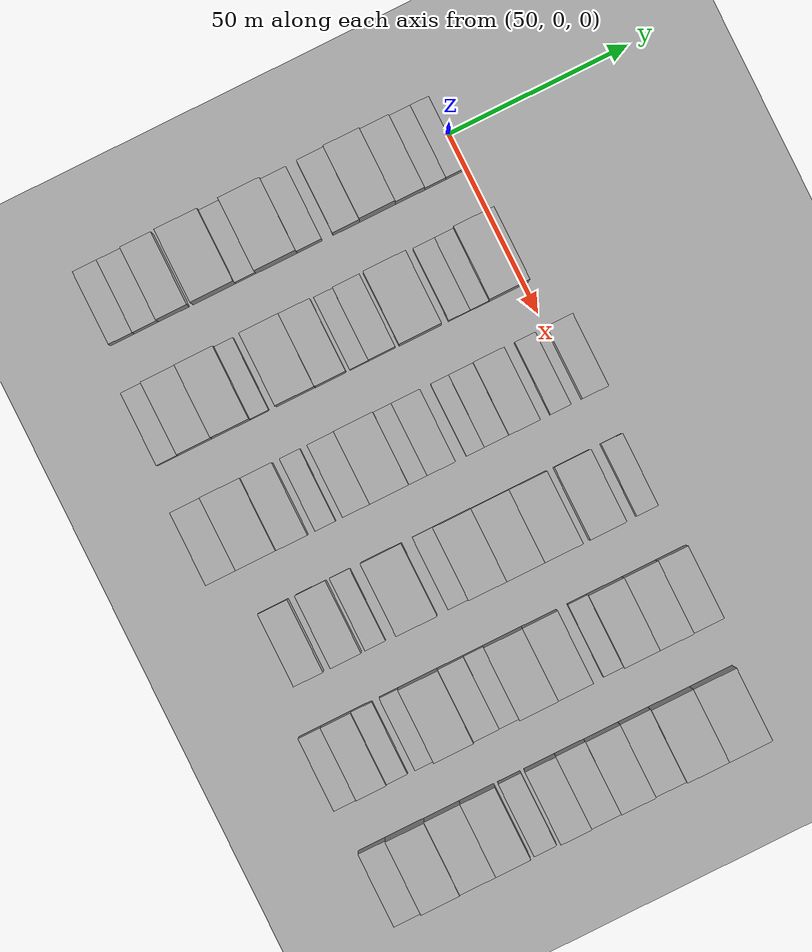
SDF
<sdf version="1.6">
 <world name="default">
  <include><name>ground_plane_1</name><uri>model://HANNAS_ground_plane</uri></include>
  <include>
   <name>ground_plane_2</name>
   <uri>model://HANNAS_ground_plane</uri>
   <pose>100 0 0  0 0 0</pose>
  </include>
  <model name="building_47">
   <static>1</static>
   <pose>50.0000 -95.4430 0 0.000000 0.000000 0.000000</pose>
   <link name="link">
    <pose>0 0 7.50 0 0 0</pose>
    <collision name="collision"><geometry><box><size>20.0000 6.6042 15.0000</size></box></geometry></collision>
    <visual name="visual">
     <cast_shadows>0</cast_shadows>
     <geometry><box><size>20.0000 6.6042 15.0000</size></box></geometry>
     <material>
      <script>
       <uri>model://HANNAS_wall/materials/scripts</uri>
       <uri>model://HANNAS_wall/materials/textures</uri>
       <name>vrc/HANNAS_wall</name>
      </script>
     </material>
    </visual>
   </link>
  </model>
  <model name="building_48">
   <static>1</static>
   <pose>50.0000 -88.7850 0 0.000000 0.000000 0.000000</pose>
   <link name="link">
    <pose>0 0 7.50 0 0 0</pose>
    <collision name="collision"><geometry><box><size>20.0000 6.7119 15.0000</size></box></geometry></collision>
    <visual name="visual">
     <cast_shadows>0</cast_shadows>
     <geometry><box><size>20.0000 6.7119 15.0000</size></box></geometry>
     <material>
      <script>
       <uri>model://HANNAS_wall/materials/scripts</uri>
       <uri>model://HANNAS_wall/materials/textures</uri>
       <name>vrc/HANNAS_wall</name>
      </script>
     </material>
    </visual>
   </link>
  </model>
  <model name="building_49">
   <static>1</static>
   <pose>50.0000 -81.1666 0 0.000000 0.000000 0.000000</pose>
   <link name="link">
    <pose>0 0 10.50 0 0 0</pose>
    <collision name="collision"><geometry><box><size>20.0000 8.5248 21.0000</size></box></geometry></collision>
    <visual name="visual">
     <cast_shadows>0</cast_shadows>
     <geometry><box><size>20.0000 8.5248 21.0000</size></box></geometry>
     <material>
      <script>
       <uri>model://HANNAS_wall/materials/scripts</uri>
       <uri>model://HANNAS_wall/materials/textures</uri>
       <name>vrc/HANNAS_wall</name>
      </script>
     </material>
    </visual>
   </link>
  </model>
  <model name="building_50">
   <static>1</static>
   <pose>50.0000 -70.0061 0 0.000000 0.000000 0.000000</pose>
   <link name="link">
    <pose>0 0 12.00 0 0 0</pose>
    <collision name="collision"><geometry><box><size>20.0000 11.7961 24.0000</size></box></geometry></collision>
    <visual name="visual">
     <cast_shadows>0</cast_shadows>
     <geometry><box><size>20.0000 11.7961 24.0000</size></box></geometry>
     <material>
      <script>
       <uri>model://HANNAS_wall/materials/scripts</uri>
       <uri>model://HANNAS_wall/materials/textures</uri>
       <name>vrc/HANNAS_wall</name>
      </script>
     </material>
    </visual>
   </link>
  </model>
  <model name="building_51">
   <static>1</static>
   <pose>50.0000 -61.2679 0 0.000000 0.000000 0.000000</pose>
   <link name="link">
    <pose>0 0 6.00 0 0 0</pose>
    <collision name="collision"><geometry><box><size>20.0000 5.6803 12.0000</size></box></geometry></collision>
    <visual name="visual">
     <cast_shadows>0</cast_shadows>
     <geometry><box><size>20.0000 5.6803 12.0000</size></box></geometry>
     <material>
      <script>
       <uri>model://HANNAS_wall/materials/scripts</uri>
       <uri>model://HANNAS_wall/materials/textures</uri>
       <name>vrc/HANNAS_wall</name>
      </script>
     </material>
    </visual>
   </link>
  </model>
  <model name="building_52">
   <static>1</static>
   <pose>50.0000 -52.7203 0 0.000000 0.000000 0.000000</pose>
   <link name="link">
    <pose>0 0 12.00 0 0 0</pose>
    <collision name="collision"><geometry><box><size>20.0000 11.4149 24.0000</size></box></geometry></collision>
    <visual name="visual">
     <cast_shadows>0</cast_shadows>
     <geometry><box><size>20.0000 11.4149 24.0000</size></box></geometry>
     <material>
      <script>
       <uri>model://HANNAS_wall/materials/scripts</uri>
       <uri>model://HANNAS_wall/materials/textures</uri>
       <name>vrc/HANNAS_wall</name>
      </script>
     </material>
    </visual>
   </link>
  </model>
  <model name="building_53">
   <static>1</static>
   <pose>50.0000 -43.5007 0 0.000000 0.000000 0.000000</pose>
   <link name="link">
    <pose>0 0 7.50 0 0 0</pose>
    <collision name="collision"><geometry><box><size>20.0000 7.0243 15.0000</size></box></geometry></collision>
    <visual name="visual">
     <cast_shadows>0</cast_shadows>
     <geometry><box><size>20.0000 7.0243 15.0000</size></box></geometry>
     <material>
      <script>
       <uri>model://HANNAS_wall/materials/scripts</uri>
       <uri>model://HANNAS_wall/materials/textures</uri>
       <name>vrc/HANNAS_wall</name>
      </script>
     </material>
    </visual>
   </link>
  </model>
  <model name="building_54">
   <static>1</static>
   <pose>50.0000 -33.2947 0 0.000000 0.000000 0.000000</pose>
   <link name="link">
    <pose>0 0 9.00 0 0 0</pose>
    <collision name="collision"><geometry><box><size>20.0000 7.3877 18.0000</size></box></geometry></collision>
    <visual name="visual">
     <cast_shadows>0</cast_shadows>
     <geometry><box><size>20.0000 7.3877 18.0000</size></box></geometry>
     <material>
      <script>
       <uri>model://HANNAS_wall/materials/scripts</uri>
       <uri>model://HANNAS_wall/materials/textures</uri>
       <name>vrc/HANNAS_wall</name>
      </script>
     </material>
    </visual>
   </link>
  </model>
  <model name="building_55">
   <static>1</static>
   <pose>50.0000 -24.6311 0 0.000000 0.000000 0.000000</pose>
   <link name="link">
    <pose>0 0 12.00 0 0 0</pose>
    <collision name="collision"><geometry><box><size>20.0000 9.9393 24.0000</size></box></geometry></collision>
    <visual name="visual">
     <cast_shadows>0</cast_shadows>
     <geometry><box><size>20.0000 9.9393 24.0000</size></box></geometry>
     <material>
      <script>
       <uri>model://HANNAS_wall/materials/scripts</uri>
       <uri>model://HANNAS_wall/materials/textures</uri>
       <name>vrc/HANNAS_wall</name>
      </script>
     </material>
    </visual>
   </link>
  </model>
  <model name="building_56">
   <static>1</static>
   <pose>50.0000 -15.6285 0 0.000000 0.000000 0.000000</pose>
   <link name="link">
    <pose>0 0 9.00 0 0 0</pose>
    <collision name="collision"><geometry><box><size>20.0000 8.0659 18.0000</size></box></geometry></collision>
    <visual name="visual">
     <cast_shadows>0</cast_shadows>
     <geometry><box><size>20.0000 8.0659 18.0000</size></box></geometry>
     <material>
      <script>
       <uri>model://HANNAS_wall/materials/scripts</uri>
       <uri>model://HANNAS_wall/materials/textures</uri>
       <name>vrc/HANNAS_wall</name>
      </script>
     </material>
    </visual>
   </link>
  </model>
  <model name="building_57">
   <static>1</static>
   <pose>50.0000 -8.6437 0 0.000000 0.000000 0.000000</pose>
   <link name="link">
    <pose>0 0 6.00 0 0 0</pose>
    <collision name="collision"><geometry><box><size>20.0000 5.9038 12.0000</size></box></geometry></collision>
    <visual name="visual">
     <cast_shadows>0</cast_shadows>
     <geometry><box><size>20.0000 5.9038 12.0000</size></box></geometry>
     <material>
      <script>
       <uri>model://HANNAS_wall/materials/scripts</uri>
       <uri>model://HANNAS_wall/materials/textures</uri>
       <name>vrc/HANNAS_wall</name>
      </script>
     </material>
    </visual>
   </link>
  </model>
  <model name="building_58">
   <static>1</static>
   <pose>50.0000 -3.1294 0 0.000000 0.000000 0.000000</pose>
   <link name="link">
    <pose>0 0 6.00 0 0 0</pose>
    <collision name="collision"><geometry><box><size>20.0000 5.1248 12.0000</size></box></geometry></collision>
    <visual name="visual">
     <cast_shadows>0</cast_shadows>
     <geometry><box><size>20.0000 5.1248 12.0000</size></box></geometry>
     <material>
      <script>
       <uri>model://HANNAS_wall/materials/scripts</uri>
       <uri>model://HANNAS_wall/materials/textures</uri>
       <name>vrc/HANNAS_wall</name>
      </script>
     </material>
    </visual>
   </link>
  </model>
  <model name="building_174">
   <static>1</static>
   <pose>82.0000 -98.5659 0 0.000000 0.000000 0.000000</pose>
   <link name="link">
    <pose>0 0 6.00 0 0 0</pose>
    <collision name="collision"><geometry><box><size>20.0000 5.9200 12.0000</size></box></geometry></collision>
    <visual name="visual">
     <cast_shadows>0</cast_shadows>
     <geometry><box><size>20.0000 5.9200 12.0000</size></box></geometry>
     <material>
      <script>
       <uri>model://HANNAS_wall/materials/scripts</uri>
       <uri>model://HANNAS_wall/materials/textures</uri>
       <name>vrc/HANNAS_wall</name>
      </script>
     </material>
    </visual>
   </link>
  </model>
  <model name="building_175">
   <static>1</static>
   <pose>82.0000 -90.9202 0 0.000000 0.000000 0.000000</pose>
   <link name="link">
    <pose>0 0 10.50 0 0 0</pose>
    <collision name="collision"><geometry><box><size>20.0000 9.3715 21.0000</size></box></geometry></collision>
    <visual name="visual">
     <cast_shadows>0</cast_shadows>
     <geometry><box><size>20.0000 9.3715 21.0000</size></box></geometry>
     <material>
      <script>
       <uri>model://HANNAS_wall/materials/scripts</uri>
       <uri>model://HANNAS_wall/materials/textures</uri>
       <name>vrc/HANNAS_wall</name>
      </script>
     </material>
    </visual>
   </link>
  </model>
  <model name="building_176">
   <static>1</static>
   <pose>82.0000 -80.9588 0 0.000000 0.000000 0.000000</pose>
   <link name="link">
    <pose>0 0 12.00 0 0 0</pose>
    <collision name="collision"><geometry><box><size>20.0000 10.5512 24.0000</size></box></geometry></collision>
    <visual name="visual">
     <cast_shadows>0</cast_shadows>
     <geometry><box><size>20.0000 10.5512 24.0000</size></box></geometry>
     <material>
      <script>
       <uri>model://HANNAS_wall/materials/scripts</uri>
       <uri>model://HANNAS_wall/materials/textures</uri>
       <name>vrc/HANNAS_wall</name>
      </script>
     </material>
    </visual>
   </link>
  </model>
  <model name="building_177">
   <static>1</static>
   <pose>82.0000 -73.1004 0 0.000000 0.000000 0.000000</pose>
   <link name="link">
    <pose>0 0 6.00 0 0 0</pose>
    <collision name="collision"><geometry><box><size>20.0000 5.1656 12.0000</size></box></geometry></collision>
    <visual name="visual">
     <cast_shadows>0</cast_shadows>
     <geometry><box><size>20.0000 5.1656 12.0000</size></box></geometry>
     <material>
      <script>
       <uri>model://HANNAS_wall/materials/scripts</uri>
       <uri>model://HANNAS_wall/materials/textures</uri>
       <name>vrc/HANNAS_wall</name>
      </script>
     </material>
    </visual>
   </link>
  </model>
  <model name="building_178">
   <static>1</static>
   <pose>82.0000 -63.1329 0 0.000000 0.000000 0.000000</pose>
   <link name="link">
    <pose>0 0 12.00 0 0 0</pose>
    <collision name="collision"><geometry><box><size>20.0000 10.7694 24.0000</size></box></geometry></collision>
    <visual name="visual">
     <cast_shadows>0</cast_shadows>
     <geometry><box><size>20.0000 10.7694 24.0000</size></box></geometry>
     <material>
      <script>
       <uri>model://HANNAS_wall/materials/scripts</uri>
       <uri>model://HANNAS_wall/materials/textures</uri>
       <name>vrc/HANNAS_wall</name>
      </script>
     </material>
    </visual>
   </link>
  </model>
  <model name="building_179">
   <static>1</static>
   <pose>82.0000 -53.4603 0 0.000000 0.000000 0.000000</pose>
   <link name="link">
    <pose>0 0 10.50 0 0 0</pose>
    <collision name="collision"><geometry><box><size>20.0000 8.5757 21.0000</size></box></geometry></collision>
    <visual name="visual">
     <cast_shadows>0</cast_shadows>
     <geometry><box><size>20.0000 8.5757 21.0000</size></box></geometry>
     <material>
      <script>
       <uri>model://HANNAS_wall/materials/scripts</uri>
       <uri>model://HANNAS_wall/materials/textures</uri>
       <name>vrc/HANNAS_wall</name>
      </script>
     </material>
    </visual>
   </link>
  </model>
  <model name="building_180">
   <static>1</static>
   <pose>82.0000 -45.5752 0 0.000000 0.000000 0.000000</pose>
   <link name="link">
    <pose>0 0 6.00 0 0 0</pose>
    <collision name="collision"><geometry><box><size>20.0000 5.1945 12.0000</size></box></geometry></collision>
    <visual name="visual">
     <cast_shadows>0</cast_shadows>
     <geometry><box><size>20.0000 5.1945 12.0000</size></box></geometry>
     <material>
      <script>
       <uri>model://HANNAS_wall/materials/scripts</uri>
       <uri>model://HANNAS_wall/materials/textures</uri>
       <name>vrc/HANNAS_wall</name>
      </script>
     </material>
    </visual>
   </link>
  </model>
  <model name="building_181">
   <static>1</static>
   <pose>82.0000 -39.2440 0 0.000000 0.000000 0.000000</pose>
   <link name="link">
    <pose>0 0 9.00 0 0 0</pose>
    <collision name="collision"><geometry><box><size>20.0000 7.4680 18.0000</size></box></geometry></collision>
    <visual name="visual">
     <cast_shadows>0</cast_shadows>
     <geometry><box><size>20.0000 7.4680 18.0000</size></box></geometry>
     <material>
      <script>
       <uri>model://HANNAS_wall/materials/scripts</uri>
       <uri>model://HANNAS_wall/materials/textures</uri>
       <name>vrc/HANNAS_wall</name>
      </script>
     </material>
    </visual>
   </link>
  </model>
  <model name="building_182">
   <static>1</static>
   <pose>82.0000 -28.6524 0 0.000000 0.000000 0.000000</pose>
   <link name="link">
    <pose>0 0 12.00 0 0 0</pose>
    <collision name="collision"><geometry><box><size>20.0000 11.7150 24.0000</size></box></geometry></collision>
    <visual name="visual">
     <cast_shadows>0</cast_shadows>
     <geometry><box><size>20.0000 11.7150 24.0000</size></box></geometry>
     <material>
      <script>
       <uri>model://HANNAS_wall/materials/scripts</uri>
       <uri>model://HANNAS_wall/materials/textures</uri>
       <name>vrc/HANNAS_wall</name>
      </script>
     </material>
    </visual>
   </link>
  </model>
  <model name="building_183">
   <static>1</static>
   <pose>82.0000 -17.8279 0 0.000000 0.000000 0.000000</pose>
   <link name="link">
    <pose>0 0 6.00 0 0 0</pose>
    <collision name="collision"><geometry><box><size>20.0000 5.9341 12.0000</size></box></geometry></collision>
    <visual name="visual">
     <cast_shadows>0</cast_shadows>
     <geometry><box><size>20.0000 5.9341 12.0000</size></box></geometry>
     <material>
      <script>
       <uri>model://HANNAS_wall/materials/scripts</uri>
       <uri>model://HANNAS_wall/materials/textures</uri>
       <name>vrc/HANNAS_wall</name>
      </script>
     </material>
    </visual>
   </link>
  </model>
  <model name="building_184">
   <static>1</static>
   <pose>82.0000 -12.2548 0 0.000000 0.000000 0.000000</pose>
   <link name="link">
    <pose>0 0 6.00 0 0 0</pose>
    <collision name="collision"><geometry><box><size>20.0000 5.2121 12.0000</size></box></geometry></collision>
    <visual name="visual">
     <cast_shadows>0</cast_shadows>
     <geometry><box><size>20.0000 5.2121 12.0000</size></box></geometry>
     <material>
      <script>
       <uri>model://HANNAS_wall/materials/scripts</uri>
       <uri>model://HANNAS_wall/materials/textures</uri>
       <name>vrc/HANNAS_wall</name>
      </script>
     </material>
    </visual>
   </link>
  </model>
  <model name="building_185">
   <static>1</static>
   <pose>82.0000 -4.0942 0 0.000000 0.000000 0.000000</pose>
   <link name="link">
    <pose>0 0 12.00 0 0 0</pose>
    <collision name="collision"><geometry><box><size>20.0000 11.1090 24.0000</size></box></geometry></collision>
    <visual name="visual">
     <cast_shadows>0</cast_shadows>
     <geometry><box><size>20.0000 11.1090 24.0000</size></box></geometry>
     <material>
      <script>
       <uri>model://HANNAS_wall/materials/scripts</uri>
       <uri>model://HANNAS_wall/materials/textures</uri>
       <name>vrc/HANNAS_wall</name>
      </script>
     </material>
    </visual>
   </link>
  </model>
  <model name="building_297">
   <static>1</static>
   <pose>114.0000 -99.3370 0 0.000000 0.000000 0.000000</pose>
   <link name="link">
    <pose>0 0 9.00 0 0 0</pose>
    <collision name="collision"><geometry><box><size>20.0000 8.3802 18.0000</size></box></geometry></collision>
    <visual name="visual">
     <cast_shadows>0</cast_shadows>
     <geometry><box><size>20.0000 8.3802 18.0000</size></box></geometry>
     <material>
      <script>
       <uri>model://HANNAS_wall/materials/scripts</uri>
       <uri>model://HANNAS_wall/materials/textures</uri>
       <name>vrc/HANNAS_wall</name>
      </script>
     </material>
    </visual>
   </link>
  </model>
  <model name="building_298">
   <static>1</static>
   <pose>114.0000 -89.6653 0 0.000000 0.000000 0.000000</pose>
   <link name="link">
    <pose>0 0 12.00 0 0 0</pose>
    <collision name="collision"><geometry><box><size>20.0000 10.9631 24.0000</size></box></geometry></collision>
    <visual name="visual">
     <cast_shadows>0</cast_shadows>
     <geometry><box><size>20.0000 10.9631 24.0000</size></box></geometry>
     <material>
      <script>
       <uri>model://HANNAS_wall/materials/scripts</uri>
       <uri>model://HANNAS_wall/materials/textures</uri>
       <name>vrc/HANNAS_wall</name>
      </script>
     </material>
    </visual>
   </link>
  </model>
  <model name="building_299">
   <static>1</static>
   <pose>114.0000 -79.8586 0 0.000000 0.000000 0.000000</pose>
   <link name="link">
    <pose>0 0 9.00 0 0 0</pose>
    <collision name="collision"><geometry><box><size>20.0000 8.6504 18.0000</size></box></geometry></collision>
    <visual name="visual">
     <cast_shadows>0</cast_shadows>
     <geometry><box><size>20.0000 8.6504 18.0000</size></box></geometry>
     <material>
      <script>
       <uri>model://HANNAS_wall/materials/scripts</uri>
       <uri>model://HANNAS_wall/materials/textures</uri>
       <name>vrc/HANNAS_wall</name>
      </script>
     </material>
    </visual>
   </link>
  </model>
  <model name="building_300">
   <static>1</static>
   <pose>114.0000 -70.7126 0 0.000000 0.000000 0.000000</pose>
   <link name="link">
    <pose>0 0 6.00 0 0 0</pose>
    <collision name="collision"><geometry><box><size>20.0000 5.6416 12.0000</size></box></geometry></collision>
    <visual name="visual">
     <cast_shadows>0</cast_shadows>
     <geometry><box><size>20.0000 5.6416 12.0000</size></box></geometry>
     <material>
      <script>
       <uri>model://HANNAS_wall/materials/scripts</uri>
       <uri>model://HANNAS_wall/materials/textures</uri>
       <name>vrc/HANNAS_wall</name>
      </script>
     </material>
    </visual>
   </link>
  </model>
  <model name="building_301">
   <static>1</static>
   <pose>114.0000 -62.1440 0 0.000000 0.000000 0.000000</pose>
   <link name="link">
    <pose>0 0 7.50 0 0 0</pose>
    <collision name="collision"><geometry><box><size>20.0000 7.4957 15.0000</size></box></geometry></collision>
    <visual name="visual">
     <cast_shadows>0</cast_shadows>
     <geometry><box><size>20.0000 7.4957 15.0000</size></box></geometry>
     <material>
      <script>
       <uri>model://HANNAS_wall/materials/scripts</uri>
       <uri>model://HANNAS_wall/materials/textures</uri>
       <name>vrc/HANNAS_wall</name>
      </script>
     </material>
    </visual>
   </link>
  </model>
  <model name="building_302">
   <static>1</static>
   <pose>114.0000 -53.0192 0 0.000000 0.000000 0.000000</pose>
   <link name="link">
    <pose>0 0 12.00 0 0 0</pose>
    <collision name="collision"><geometry><box><size>20.0000 10.7539 24.0000</size></box></geometry></collision>
    <visual name="visual">
     <cast_shadows>0</cast_shadows>
     <geometry><box><size>20.0000 10.7539 24.0000</size></box></geometry>
     <material>
      <script>
       <uri>model://HANNAS_wall/materials/scripts</uri>
       <uri>model://HANNAS_wall/materials/textures</uri>
       <name>vrc/HANNAS_wall</name>
      </script>
     </material>
    </visual>
   </link>
  </model>
  <model name="building_303">
   <static>1</static>
   <pose>114.0000 -45.1368 0 0.000000 0.000000 0.000000</pose>
   <link name="link">
    <pose>0 0 6.00 0 0 0</pose>
    <collision name="collision"><geometry><box><size>20.0000 5.0109 12.0000</size></box></geometry></collision>
    <visual name="visual">
     <cast_shadows>0</cast_shadows>
     <geometry><box><size>20.0000 5.0109 12.0000</size></box></geometry>
     <material>
      <script>
       <uri>model://HANNAS_wall/materials/scripts</uri>
       <uri>model://HANNAS_wall/materials/textures</uri>
       <name>vrc/HANNAS_wall</name>
      </script>
     </material>
    </visual>
   </link>
  </model>
  <model name="building_304">
   <static>1</static>
   <pose>114.0000 -38.6983 0 0.000000 0.000000 0.000000</pose>
   <link name="link">
    <pose>0 0 9.00 0 0 0</pose>
    <collision name="collision"><geometry><box><size>20.0000 7.8661 18.0000</size></box></geometry></collision>
    <visual name="visual">
     <cast_shadows>0</cast_shadows>
     <geometry><box><size>20.0000 7.8661 18.0000</size></box></geometry>
     <material>
      <script>
       <uri>model://HANNAS_wall/materials/scripts</uri>
       <uri>model://HANNAS_wall/materials/textures</uri>
       <name>vrc/HANNAS_wall</name>
      </script>
     </material>
    </visual>
   </link>
  </model>
  <model name="building_305">
   <static>1</static>
   <pose>114.0000 -29.2899 0 0.000000 0.000000 0.000000</pose>
   <link name="link">
    <pose>0 0 6.00 0 0 0</pose>
    <collision name="collision"><geometry><box><size>20.0000 4.9507 12.0000</size></box></geometry></collision>
    <visual name="visual">
     <cast_shadows>0</cast_shadows>
     <geometry><box><size>20.0000 4.9507 12.0000</size></box></geometry>
     <material>
      <script>
       <uri>model://HANNAS_wall/materials/scripts</uri>
       <uri>model://HANNAS_wall/materials/textures</uri>
       <name>vrc/HANNAS_wall</name>
      </script>
     </material>
    </visual>
   </link>
  </model>
  <model name="building_306">
   <static>1</static>
   <pose>114.0000 -23.4647 0 0.000000 0.000000 0.000000</pose>
   <link name="link">
    <pose>0 0 7.50 0 0 0</pose>
    <collision name="collision"><geometry><box><size>20.0000 6.6997 15.0000</size></box></geometry></collision>
    <visual name="visual">
     <cast_shadows>0</cast_shadows>
     <geometry><box><size>20.0000 6.6997 15.0000</size></box></geometry>
     <material>
      <script>
       <uri>model://HANNAS_wall/materials/scripts</uri>
       <uri>model://HANNAS_wall/materials/textures</uri>
       <name>vrc/HANNAS_wall</name>
      </script>
     </material>
    </visual>
   </link>
  </model>
  <model name="building_307">
   <static>1</static>
   <pose>114.0000 -15.8246 0 0.000000 0.000000 0.000000</pose>
   <link name="link">
    <pose>0 0 10.50 0 0 0</pose>
    <collision name="collision"><geometry><box><size>20.0000 8.5805 21.0000</size></box></geometry></collision>
    <visual name="visual">
     <cast_shadows>0</cast_shadows>
     <geometry><box><size>20.0000 8.5805 21.0000</size></box></geometry>
     <material>
      <script>
       <uri>model://HANNAS_wall/materials/scripts</uri>
       <uri>model://HANNAS_wall/materials/textures</uri>
       <name>vrc/HANNAS_wall</name>
      </script>
     </material>
    </visual>
   </link>
  </model>
  <model name="building_308">
   <static>1</static>
   <pose>114.0000 -5.6812 0 0.000000 0.000000 0.000000</pose>
   <link name="link">
    <pose>0 0 6.00 0 0 0</pose>
    <collision name="collision"><geometry><box><size>20.0000 5.7062 12.0000</size></box></geometry></collision>
    <visual name="visual">
     <cast_shadows>0</cast_shadows>
     <geometry><box><size>20.0000 5.7062 12.0000</size></box></geometry>
     <material>
      <script>
       <uri>model://HANNAS_wall/materials/scripts</uri>
       <uri>model://HANNAS_wall/materials/textures</uri>
       <name>vrc/HANNAS_wall</name>
      </script>
     </material>
    </visual>
   </link>
  </model>
  <model name="building_309">
   <static>1</static>
   <pose>114.0000 3.8052 0 0.000000 0.000000 0.000000</pose>
   <link name="link">
    <pose>0 0 7.50 0 0 0</pose>
    <collision name="collision"><geometry><box><size>20.0000 7.2668 15.0000</size></box></geometry></collision>
    <visual name="visual">
     <cast_shadows>0</cast_shadows>
     <geometry><box><size>20.0000 7.2668 15.0000</size></box></geometry>
     <material>
      <script>
       <uri>model://HANNAS_wall/materials/scripts</uri>
       <uri>model://HANNAS_wall/materials/textures</uri>
       <name>vrc/HANNAS_wall</name>
      </script>
     </material>
    </visual>
   </link>
  </model>
  <model name="building_417">
   <static>1</static>
   <pose>146.0000 -91.1633 0 0.000000 0.000000 0.000000</pose>
   <link name="link">
    <pose>0 0 9.00 0 0 0</pose>
    <collision name="collision"><geometry><box><size>20.0000 8.1325 18.0000</size></box></geometry></collision>
    <visual name="visual">
     <cast_shadows>0</cast_shadows>
     <geometry><box><size>20.0000 8.1325 18.0000</size></box></geometry>
     <material>
      <script>
       <uri>model://HANNAS_wall/materials/scripts</uri>
       <uri>model://HANNAS_wall/materials/textures</uri>
       <name>vrc/HANNAS_wall</name>
      </script>
     </material>
    </visual>
   </link>
  </model>
  <model name="building_418">
   <static>1</static>
   <pose>146.0000 -80.8485 0 0.000000 0.000000 0.000000</pose>
   <link name="link">
    <pose>0 0 9.00 0 0 0</pose>
    <collision name="collision"><geometry><box><size>20.0000 8.4970 18.0000</size></box></geometry></collision>
    <visual name="visual">
     <cast_shadows>0</cast_shadows>
     <geometry><box><size>20.0000 8.4970 18.0000</size></box></geometry>
     <material>
      <script>
       <uri>model://HANNAS_wall/materials/scripts</uri>
       <uri>model://HANNAS_wall/materials/textures</uri>
       <name>vrc/HANNAS_wall</name>
      </script>
     </material>
    </visual>
   </link>
  </model>
  <model name="building_419">
   <static>1</static>
   <pose>146.0000 -72.7862 0 0.000000 0.000000 0.000000</pose>
   <link name="link">
    <pose>0 0 6.00 0 0 0</pose>
    <collision name="collision"><geometry><box><size>20.0000 5.6276 12.0000</size></box></geometry></collision>
    <visual name="visual">
     <cast_shadows>0</cast_shadows>
     <geometry><box><size>20.0000 5.6276 12.0000</size></box></geometry>
     <material>
      <script>
       <uri>model://HANNAS_wall/materials/scripts</uri>
       <uri>model://HANNAS_wall/materials/textures</uri>
       <name>vrc/HANNAS_wall</name>
      </script>
     </material>
    </visual>
   </link>
  </model>
  <model name="building_420">
   <static>1</static>
   <pose>146.0000 -61.3409 0 0.000000 0.000000 0.000000</pose>
   <link name="link">
    <pose>0 0 12.00 0 0 0</pose>
    <collision name="collision"><geometry><box><size>20.0000 11.2629 24.0000</size></box></geometry></collision>
    <visual name="visual">
     <cast_shadows>0</cast_shadows>
     <geometry><box><size>20.0000 11.2629 24.0000</size></box></geometry>
     <material>
      <script>
       <uri>model://HANNAS_wall/materials/scripts</uri>
       <uri>model://HANNAS_wall/materials/textures</uri>
       <name>vrc/HANNAS_wall</name>
      </script>
     </material>
    </visual>
   </link>
  </model>
  <model name="building_421">
   <static>1</static>
   <pose>146.0000 -49.9107 0 0.000000 0.000000 0.000000</pose>
   <link name="link">
    <pose>0 0 6.00 0 0 0</pose>
    <collision name="collision"><geometry><box><size>20.0000 5.5974 12.0000</size></box></geometry></collision>
    <visual name="visual">
     <cast_shadows>0</cast_shadows>
     <geometry><box><size>20.0000 5.5974 12.0000</size></box></geometry>
     <material>
      <script>
       <uri>model://HANNAS_wall/materials/scripts</uri>
       <uri>model://HANNAS_wall/materials/textures</uri>
       <name>vrc/HANNAS_wall</name>
      </script>
     </material>
    </visual>
   </link>
  </model>
  <model name="building_422">
   <static>1</static>
   <pose>146.0000 -41.8515 0 0.000000 0.000000 0.000000</pose>
   <link name="link">
    <pose>0 0 12.00 0 0 0</pose>
    <collision name="collision"><geometry><box><size>20.0000 10.5210 24.0000</size></box></geometry></collision>
    <visual name="visual">
     <cast_shadows>0</cast_shadows>
     <geometry><box><size>20.0000 10.5210 24.0000</size></box></geometry>
     <material>
      <script>
       <uri>model://HANNAS_wall/materials/scripts</uri>
       <uri>model://HANNAS_wall/materials/textures</uri>
       <name>vrc/HANNAS_wall</name>
      </script>
     </material>
    </visual>
   </link>
  </model>
  <model name="building_423">
   <static>1</static>
   <pose>146.0000 -31.3823 0 0.000000 0.000000 0.000000</pose>
   <link name="link">
    <pose>0 0 12.00 0 0 0</pose>
    <collision name="collision"><geometry><box><size>20.0000 10.4174 24.0000</size></box></geometry></collision>
    <visual name="visual">
     <cast_shadows>0</cast_shadows>
     <geometry><box><size>20.0000 10.4174 24.0000</size></box></geometry>
     <material>
      <script>
       <uri>model://HANNAS_wall/materials/scripts</uri>
       <uri>model://HANNAS_wall/materials/textures</uri>
       <name>vrc/HANNAS_wall</name>
      </script>
     </material>
    </visual>
   </link>
  </model>
  <model name="building_424">
   <static>1</static>
   <pose>146.0000 -20.9183 0 0.000000 0.000000 0.000000</pose>
   <link name="link">
    <pose>0 0 12.00 0 0 0</pose>
    <collision name="collision"><geometry><box><size>20.0000 10.5107 24.0000</size></box></geometry></collision>
    <visual name="visual">
     <cast_shadows>0</cast_shadows>
     <geometry><box><size>20.0000 10.5107 24.0000</size></box></geometry>
     <material>
      <script>
       <uri>model://HANNAS_wall/materials/scripts</uri>
       <uri>model://HANNAS_wall/materials/textures</uri>
       <name>vrc/HANNAS_wall</name>
      </script>
     </material>
    </visual>
   </link>
  </model>
  <model name="building_425">
   <static>1</static>
   <pose>146.0000 -8.6181 0 0.000000 0.000000 0.000000</pose>
   <link name="link">
    <pose>0 0 10.50 0 0 0</pose>
    <collision name="collision"><geometry><box><size>20.0000 10.0897 21.0000</size></box></geometry></collision>
    <visual name="visual">
     <cast_shadows>0</cast_shadows>
     <geometry><box><size>20.0000 10.0897 21.0000</size></box></geometry>
     <material>
      <script>
       <uri>model://HANNAS_wall/materials/scripts</uri>
       <uri>model://HANNAS_wall/materials/textures</uri>
       <name>vrc/HANNAS_wall</name>
      </script>
     </material>
    </visual>
   </link>
  </model>
  <model name="building_426">
   <static>1</static>
   <pose>146.0000 2.4255 0 0.000000 0.000000 0.000000</pose>
   <link name="link">
    <pose>0 0 6.00 0 0 0</pose>
    <collision name="collision"><geometry><box><size>20.0000 5.9975 12.0000</size></box></geometry></collision>
    <visual name="visual">
     <cast_shadows>0</cast_shadows>
     <geometry><box><size>20.0000 5.9975 12.0000</size></box></geometry>
     <material>
      <script>
       <uri>model://HANNAS_wall/materials/scripts</uri>
       <uri>model://HANNAS_wall/materials/textures</uri>
       <name>vrc/HANNAS_wall</name>
      </script>
     </material>
    </visual>
   </link>
  </model>
  <model name="building_535">
   <static>1</static>
   <pose>178.0000 -96.9306 0 0.000000 0.000000 0.000000</pose>
   <link name="link">
    <pose>0 0 7.50 0 0 0</pose>
    <collision name="collision"><geometry><box><size>20.0000 6.1943 15.0000</size></box></geometry></collision>
    <visual name="visual">
     <cast_shadows>0</cast_shadows>
     <geometry><box><size>20.0000 6.1943 15.0000</size></box></geometry>
     <material>
      <script>
       <uri>model://HANNAS_wall/materials/scripts</uri>
       <uri>model://HANNAS_wall/materials/textures</uri>
       <name>vrc/HANNAS_wall</name>
      </script>
     </material>
    </visual>
   </link>
  </model>
  <model name="building_536">
   <static>1</static>
   <pose>178.0000 -89.6903 0 0.000000 0.000000 0.000000</pose>
   <link name="link">
    <pose>0 0 9.00 0 0 0</pose>
    <collision name="collision"><geometry><box><size>20.0000 8.2864 18.0000</size></box></geometry></collision>
    <visual name="visual">
     <cast_shadows>0</cast_shadows>
     <geometry><box><size>20.0000 8.2864 18.0000</size></box></geometry>
     <material>
      <script>
       <uri>model://HANNAS_wall/materials/scripts</uri>
       <uri>model://HANNAS_wall/materials/textures</uri>
       <name>vrc/HANNAS_wall</name>
      </script>
     </material>
    </visual>
   </link>
  </model>
  <model name="building_537">
   <static>1</static>
   <pose>178.0000 -82.6305 0 0.000000 0.000000 0.000000</pose>
   <link name="link">
    <pose>0 0 6.00 0 0 0</pose>
    <collision name="collision"><geometry><box><size>20.0000 5.8332 12.0000</size></box></geometry></collision>
    <visual name="visual">
     <cast_shadows>0</cast_shadows>
     <geometry><box><size>20.0000 5.8332 12.0000</size></box></geometry>
     <material>
      <script>
       <uri>model://HANNAS_wall/materials/scripts</uri>
       <uri>model://HANNAS_wall/materials/textures</uri>
       <name>vrc/HANNAS_wall</name>
      </script>
     </material>
    </visual>
   </link>
  </model>
  <model name="building_538">
   <static>1</static>
   <pose>178.0000 -75.1031 0 0.000000 0.000000 0.000000</pose>
   <link name="link">
    <pose>0 0 6.00 0 0 0</pose>
    <collision name="collision"><geometry><box><size>20.0000 5.2216 12.0000</size></box></geometry></collision>
    <visual name="visual">
     <cast_shadows>0</cast_shadows>
     <geometry><box><size>20.0000 5.2216 12.0000</size></box></geometry>
     <material>
      <script>
       <uri>model://HANNAS_wall/materials/scripts</uri>
       <uri>model://HANNAS_wall/materials/textures</uri>
       <name>vrc/HANNAS_wall</name>
      </script>
     </material>
    </visual>
   </link>
  </model>
  <model name="building_539">
   <static>1</static>
   <pose>178.0000 -67.0249 0 0.000000 0.000000 0.000000</pose>
   <link name="link">
    <pose>0 0 12.00 0 0 0</pose>
    <collision name="collision"><geometry><box><size>20.0000 10.9348 24.0000</size></box></geometry></collision>
    <visual name="visual">
     <cast_shadows>0</cast_shadows>
     <geometry><box><size>20.0000 10.9348 24.0000</size></box></geometry>
     <material>
      <script>
       <uri>model://HANNAS_wall/materials/scripts</uri>
       <uri>model://HANNAS_wall/materials/textures</uri>
       <name>vrc/HANNAS_wall</name>
      </script>
     </material>
    </visual>
   </link>
  </model>
  <model name="building_540">
   <static>1</static>
   <pose>178.0000 -57.9990 0 0.000000 0.000000 0.000000</pose>
   <link name="link">
    <pose>0 0 7.50 0 0 0</pose>
    <collision name="collision"><geometry><box><size>20.0000 7.1169 15.0000</size></box></geometry></collision>
    <visual name="visual">
     <cast_shadows>0</cast_shadows>
     <geometry><box><size>20.0000 7.1169 15.0000</size></box></geometry>
     <material>
      <script>
       <uri>model://HANNAS_wall/materials/scripts</uri>
       <uri>model://HANNAS_wall/materials/textures</uri>
       <name>vrc/HANNAS_wall</name>
      </script>
     </material>
    </visual>
   </link>
  </model>
  <model name="building_541">
   <static>1</static>
   <pose>178.0000 -51.7094 0 0.000000 0.000000 0.000000</pose>
   <link name="link">
    <pose>0 0 6.00 0 0 0</pose>
    <collision name="collision"><geometry><box><size>20.0000 5.4624 12.0000</size></box></geometry></collision>
    <visual name="visual">
     <cast_shadows>0</cast_shadows>
     <geometry><box><size>20.0000 5.4624 12.0000</size></box></geometry>
     <material>
      <script>
       <uri>model://HANNAS_wall/materials/scripts</uri>
       <uri>model://HANNAS_wall/materials/textures</uri>
       <name>vrc/HANNAS_wall</name>
      </script>
     </material>
    </visual>
   </link>
  </model>
  <model name="building_542">
   <static>1</static>
   <pose>178.0000 -43.6379 0 0.000000 0.000000 0.000000</pose>
   <link name="link">
    <pose>0 0 12.00 0 0 0</pose>
    <collision name="collision"><geometry><box><size>20.0000 10.6806 24.0000</size></box></geometry></collision>
    <visual name="visual">
     <cast_shadows>0</cast_shadows>
     <geometry><box><size>20.0000 10.6806 24.0000</size></box></geometry>
     <material>
      <script>
       <uri>model://HANNAS_wall/materials/scripts</uri>
       <uri>model://HANNAS_wall/materials/textures</uri>
       <name>vrc/HANNAS_wall</name>
      </script>
     </material>
    </visual>
   </link>
  </model>
  <model name="building_543">
   <static>1</static>
   <pose>178.0000 -33.4455 0 0.000000 0.000000 0.000000</pose>
   <link name="link">
    <pose>0 0 10.50 0 0 0</pose>
    <collision name="collision"><geometry><box><size>20.0000 9.7043 21.0000</size></box></geometry></collision>
    <visual name="visual">
     <cast_shadows>0</cast_shadows>
     <geometry><box><size>20.0000 9.7043 21.0000</size></box></geometry>
     <material>
      <script>
       <uri>model://HANNAS_wall/materials/scripts</uri>
       <uri>model://HANNAS_wall/materials/textures</uri>
       <name>vrc/HANNAS_wall</name>
      </script>
     </material>
    </visual>
   </link>
  </model>
  <model name="building_544">
   <static>1</static>
   <pose>178.0000 -22.8423 0 0.000000 0.000000 0.000000</pose>
   <link name="link">
    <pose>0 0 6.00 0 0 0</pose>
    <collision name="collision"><geometry><box><size>20.0000 5.5021 12.0000</size></box></geometry></collision>
    <visual name="visual">
     <cast_shadows>0</cast_shadows>
     <geometry><box><size>20.0000 5.5021 12.0000</size></box></geometry>
     <material>
      <script>
       <uri>model://HANNAS_wall/materials/scripts</uri>
       <uri>model://HANNAS_wall/materials/textures</uri>
       <name>vrc/HANNAS_wall</name>
      </script>
     </material>
    </visual>
   </link>
  </model>
  <model name="building_545">
   <static>1</static>
   <pose>178.0000 -15.1821 0 0.000000 0.000000 0.000000</pose>
   <link name="link">
    <pose>0 0 10.50 0 0 0</pose>
    <collision name="collision"><geometry><box><size>20.0000 9.8181 21.0000</size></box></geometry></collision>
    <visual name="visual">
     <cast_shadows>0</cast_shadows>
     <geometry><box><size>20.0000 9.8181 21.0000</size></box></geometry>
     <material>
      <script>
       <uri>model://HANNAS_wall/materials/scripts</uri>
       <uri>model://HANNAS_wall/materials/textures</uri>
       <name>vrc/HANNAS_wall</name>
      </script>
     </material>
    </visual>
   </link>
  </model>
  <model name="building_546">
   <static>1</static>
   <pose>178.0000 -5.6213 0 0.000000 0.000000 0.000000</pose>
   <link name="link">
    <pose>0 0 10.50 0 0 0</pose>
    <collision name="collision"><geometry><box><size>20.0000 9.3035 21.0000</size></box></geometry></collision>
    <visual name="visual">
     <cast_shadows>0</cast_shadows>
     <geometry><box><size>20.0000 9.3035 21.0000</size></box></geometry>
     <material>
      <script>
       <uri>model://HANNAS_wall/materials/scripts</uri>
       <uri>model://HANNAS_wall/materials/textures</uri>
       <name>vrc/HANNAS_wall</name>
      </script>
     </material>
    </visual>
   </link>
  </model>
  <model name="building_547">
   <static>1</static>
   <pose>178.0000 3.2202 0 0.000000 0.000000 0.000000</pose>
   <link name="link">
    <pose>0 0 9.00 0 0 0</pose>
    <collision name="collision"><geometry><box><size>20.0000 8.3795 18.0000</size></box></geometry></collision>
    <visual name="visual">
     <cast_shadows>0</cast_shadows>
     <geometry><box><size>20.0000 8.3795 18.0000</size></box></geometry>
     <material>
      <script>
       <uri>model://HANNAS_wall/materials/scripts</uri>
       <uri>model://HANNAS_wall/materials/textures</uri>
       <name>vrc/HANNAS_wall</name>
      </script>
     </material>
    </visual>
   </link>
  </model>
  <model name="building_648">
   <static>1</static>
   <pose>210.0000 -95.5857 0 0.000000 0.000000 0.000000</pose>
   <link name="link">
    <pose>0 0 9.00 0 0 0</pose>
    <collision name="collision"><geometry><box><size>20.0000 7.4741 18.0000</size></box></geometry></collision>
    <visual name="visual">
     <cast_shadows>0</cast_shadows>
     <geometry><box><size>20.0000 7.4741 18.0000</size></box></geometry>
     <material>
      <script>
       <uri>model://HANNAS_wall/materials/scripts</uri>
       <uri>model://HANNAS_wall/materials/textures</uri>
       <name>vrc/HANNAS_wall</name>
      </script>
     </material>
    </visual>
   </link>
  </model>
  <model name="building_649">
   <static>1</static>
   <pose>210.0000 -86.5310 0 0.000000 0.000000 0.000000</pose>
   <link name="link">
    <pose>0 0 12.00 0 0 0</pose>
    <collision name="collision"><geometry><box><size>20.0000 10.6353 24.0000</size></box></geometry></collision>
    <visual name="visual">
     <cast_shadows>0</cast_shadows>
     <geometry><box><size>20.0000 10.6353 24.0000</size></box></geometry>
     <material>
      <script>
       <uri>model://HANNAS_wall/materials/scripts</uri>
       <uri>model://HANNAS_wall/materials/textures</uri>
       <name>vrc/HANNAS_wall</name>
      </script>
     </material>
    </visual>
   </link>
  </model>
  <model name="building_650">
   <static>1</static>
   <pose>210.0000 -76.2660 0 0.000000 0.000000 0.000000</pose>
   <link name="link">
    <pose>0 0 10.50 0 0 0</pose>
    <collision name="collision"><geometry><box><size>20.0000 9.8948 21.0000</size></box></geometry></collision>
    <visual name="visual">
     <cast_shadows>0</cast_shadows>
     <geometry><box><size>20.0000 9.8948 21.0000</size></box></geometry>
     <material>
      <script>
       <uri>model://HANNAS_wall/materials/scripts</uri>
       <uri>model://HANNAS_wall/materials/textures</uri>
       <name>vrc/HANNAS_wall</name>
      </script>
     </material>
    </visual>
   </link>
  </model>
  <model name="building_651">
   <static>1</static>
   <pose>210.0000 -66.5088 0 0.000000 0.000000 0.000000</pose>
   <link name="link">
    <pose>0 0 10.50 0 0 0</pose>
    <collision name="collision"><geometry><box><size>20.0000 9.6197 21.0000</size></box></geometry></collision>
    <visual name="visual">
     <cast_shadows>0</cast_shadows>
     <geometry><box><size>20.0000 9.6197 21.0000</size></box></geometry>
     <material>
      <script>
       <uri>model://HANNAS_wall/materials/scripts</uri>
       <uri>model://HANNAS_wall/materials/textures</uri>
       <name>vrc/HANNAS_wall</name>
      </script>
     </material>
    </visual>
   </link>
  </model>
  <model name="building_652">
   <static>1</static>
   <pose>210.0000 -57.5618 0 0.000000 0.000000 0.000000</pose>
   <link name="link">
    <pose>0 0 7.50 0 0 0</pose>
    <collision name="collision"><geometry><box><size>20.0000 6.2742 15.0000</size></box></geometry></collision>
    <visual name="visual">
     <cast_shadows>0</cast_shadows>
     <geometry><box><size>20.0000 6.2742 15.0000</size></box></geometry>
     <material>
      <script>
       <uri>model://HANNAS_wall/materials/scripts</uri>
       <uri>model://HANNAS_wall/materials/textures</uri>
       <name>vrc/HANNAS_wall</name>
      </script>
     </material>
    </visual>
   </link>
  </model>
  <model name="building_653">
   <static>1</static>
   <pose>210.0000 -49.1807 0 0.000000 0.000000 0.000000</pose>
   <link name="link">
    <pose>0 0 10.50 0 0 0</pose>
    <collision name="collision"><geometry><box><size>20.0000 8.4879 21.0000</size></box></geometry></collision>
    <visual name="visual">
     <cast_shadows>0</cast_shadows>
     <geometry><box><size>20.0000 8.4879 21.0000</size></box></geometry>
     <material>
      <script>
       <uri>model://HANNAS_wall/materials/scripts</uri>
       <uri>model://HANNAS_wall/materials/textures</uri>
       <name>vrc/HANNAS_wall</name>
      </script>
     </material>
    </visual>
   </link>
  </model>
  <model name="building_654">
   <static>1</static>
   <pose>210.0000 -40.8567 0 0.000000 0.000000 0.000000</pose>
   <link name="link">
    <pose>0 0 9.00 0 0 0</pose>
    <collision name="collision"><geometry><box><size>20.0000 8.1602 18.0000</size></box></geometry></collision>
    <visual name="visual">
     <cast_shadows>0</cast_shadows>
     <geometry><box><size>20.0000 8.1602 18.0000</size></box></geometry>
     <material>
      <script>
       <uri>model://HANNAS_wall/materials/scripts</uri>
       <uri>model://HANNAS_wall/materials/textures</uri>
       <name>vrc/HANNAS_wall</name>
      </script>
     </material>
    </visual>
   </link>
  </model>
  <model name="building_655">
   <static>1</static>
   <pose>210.0000 -32.0234 0 0.000000 0.000000 0.000000</pose>
   <link name="link">
    <pose>0 0 10.50 0 0 0</pose>
    <collision name="collision"><geometry><box><size>20.0000 9.5065 21.0000</size></box></geometry></collision>
    <visual name="visual">
     <cast_shadows>0</cast_shadows>
     <geometry><box><size>20.0000 9.5065 21.0000</size></box></geometry>
     <material>
      <script>
       <uri>model://HANNAS_wall/materials/scripts</uri>
       <uri>model://HANNAS_wall/materials/textures</uri>
       <name>vrc/HANNAS_wall</name>
      </script>
     </material>
    </visual>
   </link>
  </model>
  <model name="building_656">
   <static>1</static>
   <pose>210.0000 -23.0593 0 0.000000 0.000000 0.000000</pose>
   <link name="link">
    <pose>0 0 9.00 0 0 0</pose>
    <collision name="collision"><geometry><box><size>20.0000 8.4217 18.0000</size></box></geometry></collision>
    <visual name="visual">
     <cast_shadows>0</cast_shadows>
     <geometry><box><size>20.0000 8.4217 18.0000</size></box></geometry>
     <material>
      <script>
       <uri>model://HANNAS_wall/materials/scripts</uri>
       <uri>model://HANNAS_wall/materials/textures</uri>
       <name>vrc/HANNAS_wall</name>
      </script>
     </material>
    </visual>
   </link>
  </model>
  <model name="building_657">
   <static>1</static>
   <pose>210.0000 -13.0804 0 0.000000 0.000000 0.000000</pose>
   <link name="link">
    <pose>0 0 12.00 0 0 0</pose>
    <collision name="collision"><geometry><box><size>20.0000 11.5362 24.0000</size></box></geometry></collision>
    <visual name="visual">
     <cast_shadows>0</cast_shadows>
     <geometry><box><size>20.0000 11.5362 24.0000</size></box></geometry>
     <material>
      <script>
       <uri>model://HANNAS_wall/materials/scripts</uri>
       <uri>model://HANNAS_wall/materials/textures</uri>
       <name>vrc/HANNAS_wall</name>
      </script>
     </material>
    </visual>
   </link>
  </model>
  <model name="building_658">
   <static>1</static>
   <pose>210.0000 -1.3941 0 0.000000 0.000000 0.000000</pose>
   <link name="link">
    <pose>0 0 12.00 0 0 0</pose>
    <collision name="collision"><geometry><box><size>20.0000 11.8364 24.0000</size></box></geometry></collision>
    <visual name="visual">
     <cast_shadows>0</cast_shadows>
     <geometry><box><size>20.0000 11.8364 24.0000</size></box></geometry>
     <material>
      <script>
       <uri>model://HANNAS_wall/materials/scripts</uri>
       <uri>model://HANNAS_wall/materials/textures</uri>
       <name>vrc/HANNAS_wall</name>
      </script>
     </material>
    </visual>
   </link>
  </model>
 </world>
</sdf>
